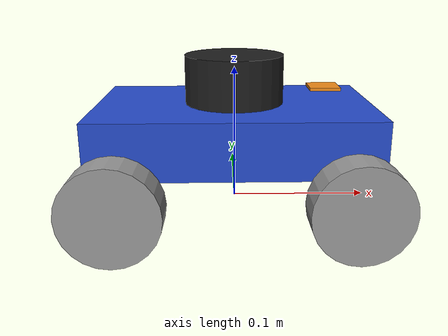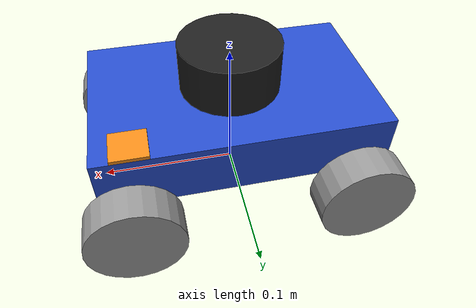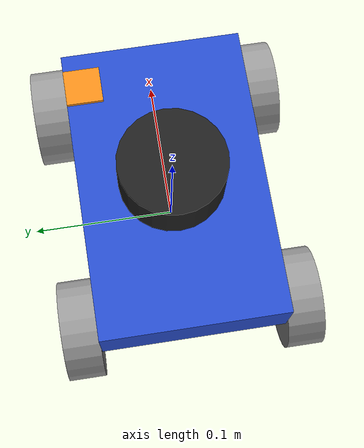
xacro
<?xml version="1.0"?>
<robot name="my_robot" xmlns:xacro="http://www.ros.org/wiki/xacro">

    <xacro:arg name="is_sim" default="false"/>

    <!-- Properties -->
    <xacro:include filename="common_properties.xacro" />

    <!-- ROS2 Control -->
    <xacro:include filename="my_robot_ros2_control.xacro"/>

    <!-- Robot URDF -->
    <xacro:include filename="mobile_base.xacro" />

    <!-- Include Gazebo Parameters -->
    <xacro:include filename="mobile_base_gazebo.xacro" />

</robot>

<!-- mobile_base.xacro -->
<robot xmlns:xacro="http://www.ros.org/wiki/xacro">

    <!-- Base -->
    <xacro:property name="base_length" value="0.2" />
    <xacro:property name="base_width" value="0.125" />
    <xacro:property name="base_height" value="0.04" />

    <!-- Wheels -->
    <xacro:property name="wheel_radius" value="0.034" />
    <xacro:property name="wheel_length" value="0.025" />

    <!-- Lidar -->
    <xacro:property name="lidar_radius" value="0.036" />
    <xacro:property name="lidar_length" value="0.035" />

    <!-- IMU -->
    <xacro:property name="imu_length" value="0.025" />
    <xacro:property name="imu_width" value="0.025" />
    <xacro:property name="imu_height" value="0.0025" />

    <link name="base_footprint" />

    <link name="base_link">
        <visual>
            <geometry>
                <box size="${base_length} ${base_width} ${base_height}" />
            </geometry>
            <origin xyz="0 0 ${base_height / 2.0}" rpy="0 0 0" />
            <material name="blue" />
        </visual>
        <collision>
            <geometry>
                <box size="${base_length} ${base_width} ${base_height}" />
            </geometry>
            <origin xyz="0 0 ${base_height / 2.0}" rpy="0 0 0" />
        </collision>
        <xacro:box_inertia m="5.0" l="${2*base_length}" w="${2*base_width}" h="${2*base_height}"
        xyz="0 0 ${base_height / 2.0}" rpy="0 0 0" />
    </link>

    <link name="imu_link">
        <visual>
            <geometry>
                <box size="${imu_length} ${imu_width} ${imu_height}" />
            </geometry>
            <origin xyz="0 0 0" rpy="0 0 0" />
            <material name="orange" />
        </visual>
        <collision>
            <geometry>
                <box size="${imu_length} ${imu_width} ${imu_height}" />
            </geometry>
            <origin xyz="0 0 0" rpy="0 0 0" />
        </collision>
        <xacro:box_inertia m="5.0" l="${2*imu_length}" w="${2*imu_width}" h="${2*imu_height}"
            xyz="0 0 ${imu_height / 2.0}" rpy="0 0 0" />
    </link>

    <link name="lidar_link">
          <visual>
              <geometry>
                  <cylinder radius="${lidar_radius}" length = "${lidar_length}"/>
              </geometry>
              <origin xyz="0 0 0" rpy="0 0 0"/>
              <material name="black"/>
          </visual>
          <collision>
            <geometry>
                <cylinder radius="${lidar_radius}" length = "${lidar_length}"/>
            </geometry>
            <origin xyz="0 0 0" rpy="0 0 0"/>
          </collision>
    </link>

    <xacro:macro name="wheel_link" params="prefix">
        <link name="${prefix}_wheel_link">
            <visual>
                <geometry>
                    <cylinder radius="${wheel_radius}" length="${wheel_length}" />
                </geometry>
                <origin xyz="0 0 0" rpy="${pi / 2.0} 0 0" />
                <material name="grey" />
            </visual>
            <collision>
                <geometry>
                    <cylinder radius="${wheel_radius}" length="${wheel_length}" />
                </geometry>
                <origin xyz="0 0 0" rpy="${pi / 2.0} 0 0" />
            </collision>
            <xacro:cylinder_inertia m="1.0" r="${2*wheel_radius}" h="${2*wheel_length}"
                                    xyz="0 0 0" rpy="${pi / 2.0} 0 0" />
        </link>
    </xacro:macro>

    <xacro:wheel_link prefix="right_front" />
    <xacro:wheel_link prefix="right_back" />
    <xacro:wheel_link prefix="left_front" />
    <xacro:wheel_link prefix="left_back" />
    <!-- # I added this. -->

    <joint name="base_joint" type="fixed">
        <parent link="base_footprint" />
        <child link="base_link" />
        <origin xyz="0 0 ${wheel_radius}" rpy="0 0 0"/>
    </joint>

    <joint name="base_right_back_wheel_joint" type="continuous">
        <parent link="base_link" />
        <child link="right_back_wheel_link" />
        <origin xyz="${-base_length / 2.0 + 0.02} ${-(base_width + wheel_length) / 2.0} -0.015" rpy="0 0 0" />
        <axis xyz="0 1 0" />
    </joint>

    <joint name="base_right_front_wheel_joint" type="continuous">
        <parent link="base_link" />
        <child link="right_front_wheel_link" />
        <origin xyz="${base_length / 2.0 - 0.02} ${-(base_width + wheel_length) / 2.0} -0.015" rpy="0 0 0" />
        <axis xyz="0 1 0" />
    </joint>

    <joint name="base_left_back_wheel_joint" type="continuous">
        <parent link="base_link" />
        <child link="left_back_wheel_link" />
        <origin xyz="${-base_length / 2.0 + 0.02} ${(base_width + wheel_length) / 2.0} -0.015" rpy="0 0 0" />
        <axis xyz="0 1 0" />
    </joint>

    <joint name="base_left_front_wheel_joint" type="continuous">
        <parent link="base_link" />
        <child link="left_front_wheel_link" />
        <origin xyz="${base_length / 2.0 - 0.02} ${(base_width + wheel_length) / 2.0} -0.015" rpy="0 0 0" />
        <axis xyz="0 1 0" />
    </joint>

    <joint name="base_lidar_joint" type="fixed">
        <parent link="base_link" />
        <child link="lidar_link" />
        <origin xyz="0 0 ${base_height + lidar_length / 2.0}" rpy="0 0 0" />
        <axis xyz="0 0 {3.1415/2.0}" />
    </joint>

    <joint name="base_imu_joint" type="fixed">
        <parent link="base_link" />
        <child link="imu_link" />
        <origin xyz="${base_length / 2.0 - imu_length} ${base_width / 2.0 - imu_width / 2.0} ${base_height + imu_height / 2.0}" rpy="0 0 0" />
        <axis xyz="0 0 0" />
    </joint>

</robot>
